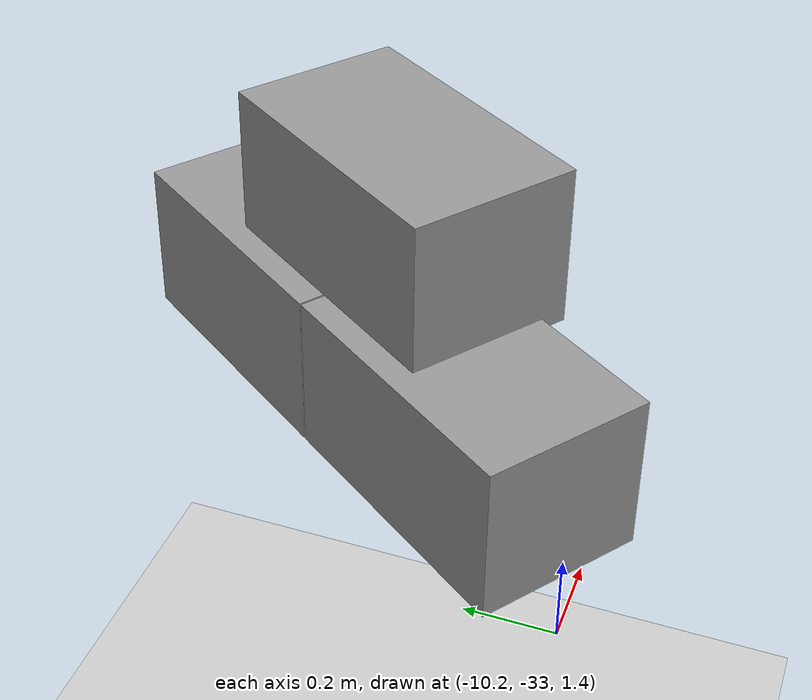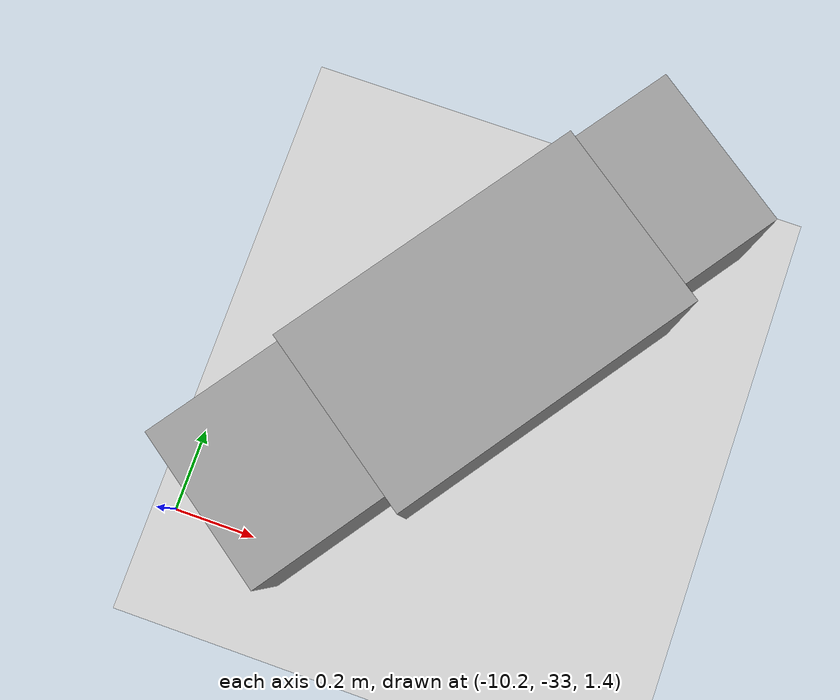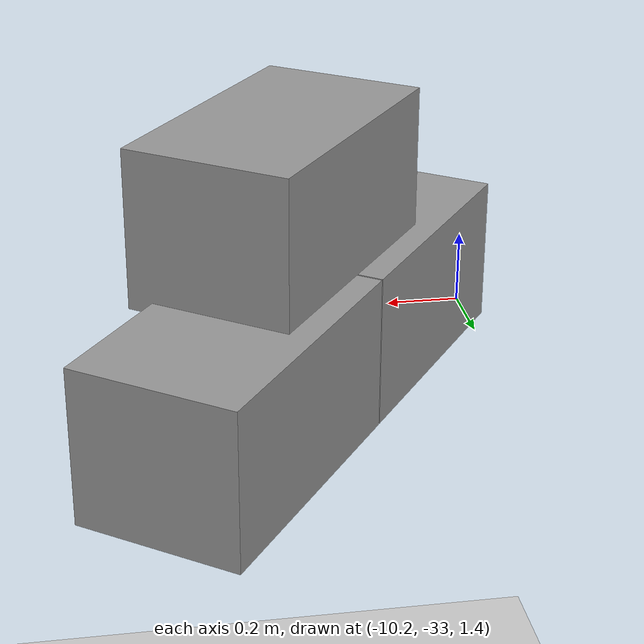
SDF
<sdf version="1.7">
 <world name="default">
  <model name="ground_plane">
   <static>1</static>
   <link name="link">
    <collision name="collision">
     <geometry><plane><normal>0 0 1</normal><size>100 100</size></plane></geometry>
     <surface>
      <contact><collide_bitmask>65535</collide_bitmask></contact>
      <friction><ode><mu>100</mu><mu2>50</mu2></ode></friction>
     </surface>
    </collision>
    <visual name="visual">
     <cast_shadows>0</cast_shadows>
     <geometry><plane><normal>0 0 1</normal><size>100 100</size></plane></geometry>
     <material>
      <script><uri>file://media/materials/scripts/gazebo.material</uri><name>Gazebo/Grey</name></script>
     </material>
    </visual>
   </link>
  </model>
  <model name="Add_Box_clone_clone_3_clone_21">
   <link name="link">
    <inertial>
     <mass>1</mass>
     <inertia>
      <ixx>0.166667</ixx>
      <ixy>0</ixy>
      <ixz>0</ixz>
      <iyy>0.166667</iyy>
      <iyz>0</iyz>
      <izz>0.166667</izz>
     </inertia>
    </inertial>
    <kinematic>1</kinematic>
    <gravity>0</gravity>
    <visual name="visual">
     <geometry><box><size>0.686 0.406 0.381</size></box></geometry>
     <material>
      <script><name>Gazebo/Grey</name><uri>file://media/materials/scripts/gazebo.material</uri></script>
      <shader type="pixel"><normal_map>__default__</normal_map></shader>
      <ambient>0.3 0.3 0.3 1</ambient>
      <diffuse>0.7 0.7 0.7 1</diffuse>
      <specular>0.01 0.01 0.01 1</specular>
      <emissive>0 0 0 1</emissive>
     </material>
    </visual>
    <collision name="collision">
     <geometry><box><size>1 1 1</size></box></geometry>
     <surface>
      <friction>
       <ode><mu>1</mu><mu2>1</mu2><fdir1>0 0 0</fdir1><slip1>0</slip1><slip2>0</slip2></ode>
       <torsional>
        <coefficient>1</coefficient>
        <patch_radius>0</patch_radius>
        <surface_radius>0</surface_radius>
        <use_patch_radius>1</use_patch_radius>
        <ode><slip>0</slip></ode>
       </torsional>
      </friction>
      <bounce><restitution_coefficient>0</restitution_coefficient><threshold>1e+06</threshold></bounce>
      <contact>
       <collide_without_contact>0</collide_without_contact>
       <collide_without_contact_bitmask>1</collide_without_contact_bitmask>
       <collide_bitmask>1</collide_bitmask>
       <ode>
        <soft_cfm>0</soft_cfm>
        <soft_erp>0.2</soft_erp>
        <kp>1e+13</kp>
        <kd>1</kd>
        <max_vel>0.01</max_vel>
        <min_depth>0</min_depth>
       </ode>
       <bullet>
        <split_impulse>1</split_impulse>
        <split_impulse_penetration_threshold>-0.01</split_impulse_penetration_threshold>
        <soft_cfm>0</soft_cfm>
        <soft_erp>0.2</soft_erp>
        <kp>1e+13</kp>
        <kd>1</kd>
       </bullet>
      </contact>
     </surface>
    </collision>
   </link>
   <link name="link_clone">
    <inertial>
     <mass>1</mass>
     <inertia>
      <ixx>0.166667</ixx>
      <ixy>0</ixy>
      <ixz>0</ixz>
      <iyy>0.166667</iyy>
      <iyz>0</iyz>
      <izz>0.166667</izz>
     </inertia>
    </inertial>
    <pose>-0.343354 -0.063316 0.354303 1e-05 -0 0</pose>
    <gravity>0</gravity>
    <visual name="visual">
     <geometry><box><size>0.686 0.406 0.381</size></box></geometry>
     <material>
      <script><name>Gazebo/Grey</name><uri>file://media/materials/scripts/gazebo.material</uri></script>
      <shader type="pixel"><normal_map>__default__</normal_map></shader>
      <ambient>0.3 0.3 0.3 1</ambient>
      <diffuse>0.7 0.7 0.7 1</diffuse>
      <specular>0.01 0.01 0.01 1</specular>
      <emissive>0 0 0 1</emissive>
     </material>
    </visual>
    <collision name="collision">
     <geometry><box><size>1 1 1</size></box></geometry>
     <surface>
      <friction>
       <ode><mu>1</mu><mu2>1</mu2><fdir1>0 0 0</fdir1><slip1>0</slip1><slip2>0</slip2></ode>
       <torsional>
        <coefficient>1</coefficient>
        <patch_radius>0</patch_radius>
        <surface_radius>0</surface_radius>
        <use_patch_radius>1</use_patch_radius>
        <ode><slip>0</slip></ode>
       </torsional>
      </friction>
      <bounce><restitution_coefficient>0</restitution_coefficient><threshold>1e+06</threshold></bounce>
      <contact>
       <collide_without_contact>0</collide_without_contact>
       <collide_without_contact_bitmask>1</collide_without_contact_bitmask>
       <collide_bitmask>1</collide_bitmask>
       <ode>
        <soft_cfm>0</soft_cfm>
        <soft_erp>0.2</soft_erp>
        <kp>1e+13</kp>
        <kd>1</kd>
        <max_vel>0.01</max_vel>
        <min_depth>0</min_depth>
       </ode>
       <bullet>
        <split_impulse>1</split_impulse>
        <split_impulse_penetration_threshold>-0.01</split_impulse_penetration_threshold>
        <soft_cfm>0</soft_cfm>
        <soft_erp>0.2</soft_erp>
        <kp>1e+13</kp>
        <kd>1</kd>
       </bullet>
      </contact>
     </surface>
    </collision>
   </link>
   <link name="link_clone_clone">
    <inertial>
     <mass>1</mass>
     <inertia>
      <ixx>0.166667</ixx>
      <ixy>0</ixy>
      <ixz>0</ixz>
      <iyy>0.166667</iyy>
      <iyz>0</iyz>
      <izz>0.166667</izz>
     </inertia>
    </inertial>
    <pose>-0.690786 -0.000183 -1e-05 2e-05 -0 0</pose>
    <gravity>0</gravity>
    <visual name="visual">
     <geometry><box><size>0.686 0.406 0.381</size></box></geometry>
     <material>
      <script><name>Gazebo/Grey</name><uri>file://media/materials/scripts/gazebo.material</uri></script>
      <shader type="pixel"><normal_map>__default__</normal_map></shader>
      <ambient>0.3 0.3 0.3 1</ambient>
      <diffuse>0.7 0.7 0.7 1</diffuse>
      <specular>0.01 0.01 0.01 1</specular>
      <emissive>0 0 0 1</emissive>
     </material>
    </visual>
    <collision name="collision">
     <geometry><box><size>1 1 1</size></box></geometry>
     <surface>
      <friction>
       <ode><mu>1</mu><mu2>1</mu2><fdir1>0 0 0</fdir1><slip1>0</slip1><slip2>0</slip2></ode>
       <torsional>
        <coefficient>1</coefficient>
        <patch_radius>0</patch_radius>
        <surface_radius>0</surface_radius>
        <use_patch_radius>1</use_patch_radius>
        <ode><slip>0</slip></ode>
       </torsional>
      </friction>
      <bounce><restitution_coefficient>0</restitution_coefficient><threshold>1e+06</threshold></bounce>
      <contact>
       <collide_without_contact>0</collide_without_contact>
       <collide_without_contact_bitmask>1</collide_without_contact_bitmask>
       <collide_bitmask>1</collide_bitmask>
       <ode>
        <soft_cfm>0</soft_cfm>
        <soft_erp>0.2</soft_erp>
        <kp>1e+13</kp>
        <kd>1</kd>
        <max_vel>0.01</max_vel>
        <min_depth>0</min_depth>
       </ode>
       <bullet>
        <split_impulse>1</split_impulse>
        <split_impulse_penetration_threshold>-0.01</split_impulse_penetration_threshold>
        <soft_cfm>0</soft_cfm>
        <soft_erp>0.2</soft_erp>
        <kp>1e+13</kp>
        <kd>1</kd>
       </bullet>
      </contact>
     </surface>
    </collision>
   </link>
   <static>0</static>
   <pose>-9.4662 -32.1276 1.61518 0 -0 0.950497</pose>
  </model>
 </world>
</sdf>
